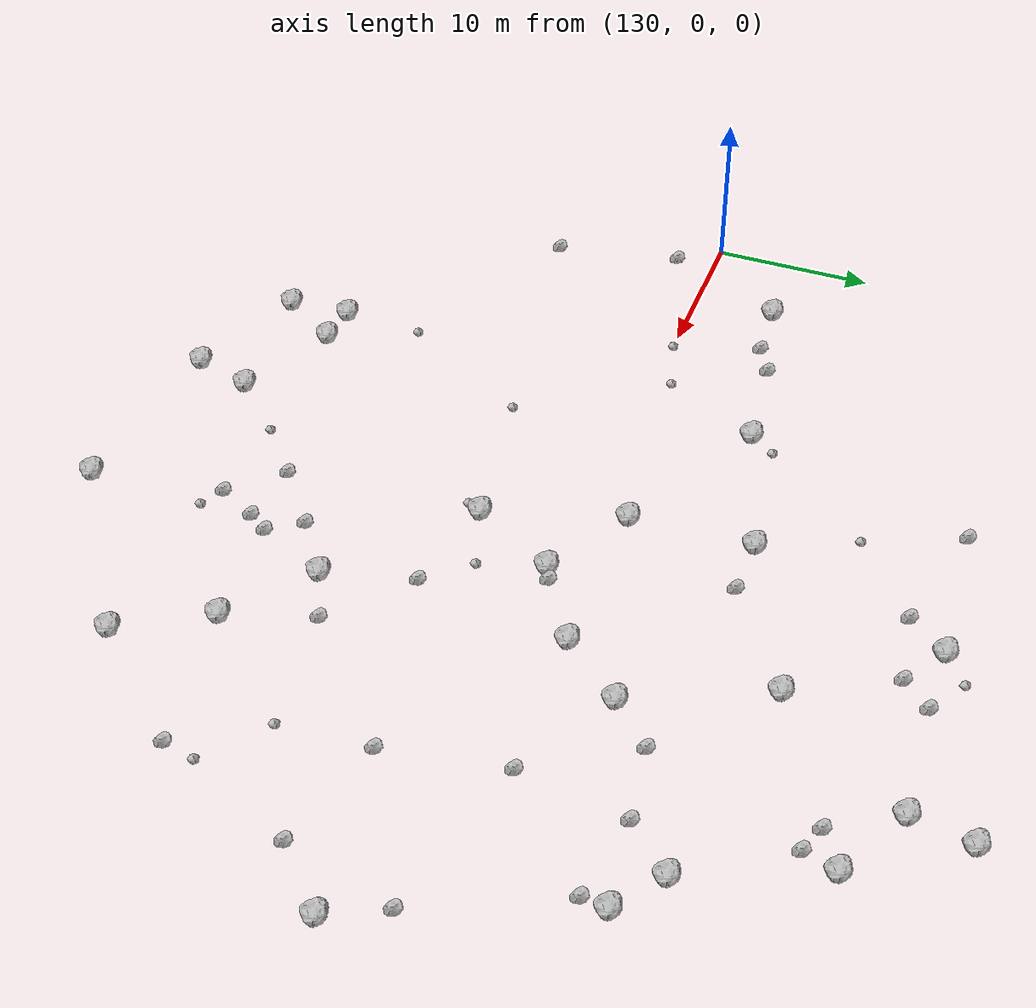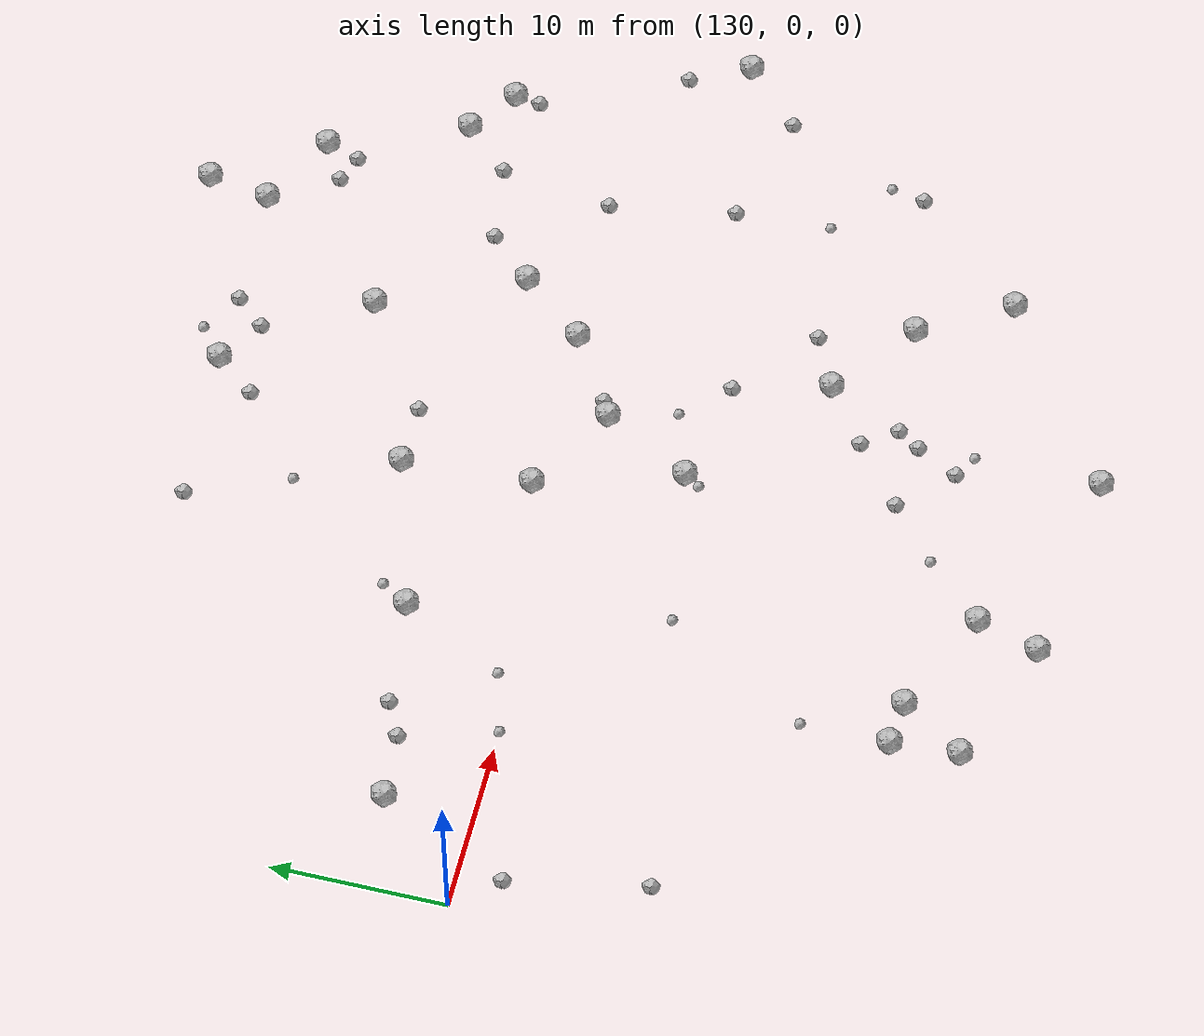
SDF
<sdf version="1.6">
 <world name="default">
  <include><uri>model://sun</uri></include>
  <model name="rock1_4_2">
   <include><uri>model://rock1</uri><pose>157.20539760571606 9.890798535691005 0.5 0 0 0</pose></include>
  </model>
  <model name="rock1_4_3">
   <include><uri>model://rock1</uri><pose>145.3965714052293 -20.907007430821533 0.5 0 0 0</pose></include>
  </model>
  <model name="rock1_4_4">
   <include><uri>model://rock1</uri><pose>145.6179734705588 -24.791983513725754 0.5 0 0 0</pose></include>
  </model>
  <model name="rock1_4_5">
   <include><uri>model://rock1</uri><pose>164.86655041010167 -28.967815381065762 0.5 0 0 0</pose></include>
  </model>
  <model name="rock1_4_6">
   <include><uri>model://rock1</uri><pose>189.46577213071947 -3.113488268676573 0.5 0 0 0</pose></include>
  </model>
  <model name="rock1_4_7">
   <include><uri>model://rock1</uri><pose>174.15365068872904 26.060533082342694 0.5 0 0 0</pose></include>
  </model>
  <model name="rock1_4_8">
   <include><uri>model://rock1</uri><pose>175.9566475192942 -21.81131245353731 0.5 0 0 0</pose></include>
  </model>
  <model name="rock1_4_9">
   <include><uri>model://rock1</uri><pose>173.46041346976193 22.385763172546582 0.5 0 0 0</pose></include>
  </model>
  <model name="rock1_4_10">
   <include><uri>model://rock1</uri><pose>135.69196584013005 5.09342452013685 0.5 0 0 0</pose></include>
  </model>
  <model name="rock1_4_11">
   <include><uri>model://rock1</uri><pose>153.15540949099355 -27.621157942832454 0.5 0 0 0</pose></include>
  </model>
  <model name="rock1_4_12">
   <include><uri>model://rock1</uri><pose>178.12328587047338 19.994080557914884 0.5 0 0 0</pose></include>
  </model>
  <model name="rock1_4_13">
   <include><uri>model://rock1</uri><pose>184.1583543342375 10.074927219355303 0.5 0 0 0</pose></include>
  </model>
  <model name="rock1_4_14">
   <include><uri>model://rock1</uri><pose>160.02790828185533 -5.958219433465221 0.5 0 0 0</pose></include>
  </model>
  <model name="rock1_4_15">
   <include><uri>model://rock1</uri><pose>181.30901352430277 12.146558302669767 0.5 0 0 0</pose></include>
  </model>
  <model name="rock1_4_16">
   <include><uri>model://rock1</uri><pose>171.21984607954064 6.094747046434925 0.5 0 0 0</pose></include>
  </model>
  <model name="rock1_4_17">
   <include><uri>model://rock1</uri><pose>161.72530703130263 21.92780334393825 0.5 0 0 0</pose></include>
  </model>
  <model name="rock1_4_18">
   <include><uri>model://rock1</uri><pose>147.94820014877982 7.125162997318398 0.5 0 0 0</pose></include>
  </model>
  <model name="rock1_4_19">
   <include><uri>model://rock1</uri><pose>157.50593379061564 2.337284746298586 0.5 0 0 0</pose></include>
  </model>
  <model name="rock1_4_20">
   <include><uri>model://rock1</uri><pose>167.97773956031153 2.270267730151083 0.5 0 0 0</pose></include>
  </model>
  <model name="rock1_4_21">
   <include><uri>model://rock1</uri><pose>148.0232955053427 -21.17616177180158 0.5 0 0 0</pose></include>
  </model>
  <model name="rock1_4_22">
   <include><uri>model://rock1</uri><pose>167.9287631587917 -12.718067673057849 0.5 0 0 0</pose></include>
  </model>
  <model name="rock1_4_23">
   <include><uri>model://rock1</uri><pose>172.8830928345351 -16.585074612400962 0.5 0 0 0</pose></include>
  </model>
  <model name="rock1_4_24">
   <include><uri>model://rock1</uri><pose>162.95178134020176 -0.753299029259491 0.5 0 0 0</pose></include>
  </model>
  <model name="rock1_4_25">
   <include><uri>model://rock1</uri><pose>167.5593904440983 14.259311015990349 0.5 0 0 0</pose></include>
  </model>
  <model name="rock1_4_26">
   <include><uri>model://rock1</uri><pose>154.26827681750726 -24.019749820688265 0.5 0 0 0</pose></include>
  </model>
  <model name="rock2_4_0">
   <include><uri>model://rock2</uri><pose>160.74439515302896 -17.97760002853094 0.3 0 0 0</pose></include>
  </model>
  <model name="rock2_4_1">
   <include><uri>model://rock2</uri><pose>178.53940458068166 9.401624433245196 0.3 0 0 0</pose></include>
  </model>
  <model name="rock2_4_2">
   <include><uri>model://rock2</uri><pose>139.4784519577242 5.384108698596549 0.3 0 0 0</pose></include>
  </model>
  <model name="rock2_4_3">
   <include><uri>model://rock2</uri><pose>175.68524666860088 18.616409088996647 0.3 0 0 0</pose></include>
  </model>
  <model name="rock2_4_4">
   <include><uri>model://rock2</uri><pose>171.05118564110438 -11.243505256004223 0.3 0 0 0</pose></include>
  </model>
  <model name="rock2_4_5">
   <include><uri>model://rock2</uri><pose>165.94819886727112 21.964946155906595 0.3 0 0 0</pose></include>
  </model>
  <model name="rock2_4_6">
   <include><uri>model://rock2</uri><pose>160.8212589007718 9.851597166364293 0.3 0 0 0</pose></include>
  </model>
  <model name="rock2_4_7">
   <include><uri>model://rock2</uri><pose>163.5316277746741 -20.859988596910334 0.3 0 0 0</pose></include>
  </model>
  <model name="rock2_4_8">
   <include><uri>model://rock2</uri><pose>183.87911650312202 8.562793518249087 0.3 0 0 0</pose></include>
  </model>
  <model name="rock2_4_9">
   <include><uri>model://rock2</uri><pose>133.51359144827853 -10.352413592305261 0.3 0 0 0</pose></include>
  </model>
  <model name="rock2_4_10">
   <include><uri>model://rock2</uri><pose>164.36958811436284 -15.152764842956579 0.3 0 0 0</pose></include>
  </model>
  <model name="rock2_4_11">
   <include><uri>model://rock2</uri><pose>177.47699917274002 2.7411559085284267 0.3 0 0 0</pose></include>
  </model>
  <model name="rock2_4_12">
   <include><uri>model://rock2</uri><pose>164.35740415787436 20.22365111124836 0.3 0 0 0</pose></include>
  </model>
  <model name="rock2_4_13">
   <include><uri>model://rock2</uri><pose>163.83170369057746 -0.28262295172317664 0.3 0 0 0</pose></include>
  </model>
  <model name="rock2_4_14">
   <include><uri>model://rock2</uri><pose>152.21125371608463 21.303942547934184 0.3 0 0 0</pose></include>
  </model>
  <model name="rock2_4_15">
   <include><uri>model://rock2</uri><pose>165.7286257287506 -17.125518377019155 0.3 0 0 0</pose></include>
  </model>
  <model name="rock2_4_16">
   <include><uri>model://rock2</uri><pose>185.81925180145623 -6.445502410248874 0.3 0 0 0</pose></include>
  </model>
  <model name="rock2_4_17">
   <include><uri>model://rock2</uri><pose>178.67300860130325 -4.618580812134873 0.3 0 0 0</pose></include>
  </model>
  <model name="rock2_4_18">
   <include><uri>model://rock2</uri><pose>159.6870684363073 19.534321079922634 0.3 0 0 0</pose></include>
  </model>
  <model name="rock2_4_19">
   <include><uri>model://rock2</uri><pose>141.50043143162426 6.394295354040565 0.3 0 0 0</pose></include>
  </model>
  <model name="rock2_4_20">
   <include><uri>model://rock2</uri><pose>131.99824528919865 -2.4810185781843046 0.3 0 0 0</pose></include>
  </model>
  <model name="rock2_4_21">
   <include><uri>model://rock2</uri><pose>187.7113824175961 0.32365767127459577 0.3 0 0 0</pose></include>
  </model>
  <model name="rock2_4_22">
   <include><uri>model://rock2</uri><pose>182.13470351052283 -15.140452322370804 0.3 0 0 0</pose></include>
  </model>
  <model name="rock2_4_23">
   <include><uri>model://rock2</uri><pose>166.4057331356049 -7.213660891932019 0.3 0 0 0</pose></include>
  </model>
  <model name="rock2_4_24">
   <include><uri>model://rock2</uri><pose>164.8340915623649 -18.42483510940535 0.3 0 0 0</pose></include>
  </model>
  <model name="rock2_4_25">
   <include><uri>model://rock2</uri><pose>177.37519886975673 17.996885848171353 0.3 0 0 0</pose></include>
  </model>
  <model name="rock2_4_26">
   <include><uri>model://rock2</uri><pose>173.74360356876764 8.706932683006954 0.3 0 0 0</pose></include>
  </model>
  <model name="rock3_4_0">
   <include><uri>model://rock3</uri><pose>159.41953772212116 -6.896183713267252 0.2 0 0 0</pose></include>
  </model>
  <model name="rock3_4_1">
   <include><uri>model://rock3</uri><pose>182.59419881690604 -13.160481460537454 0.2 0 0 0</pose></include>
  </model>
  <model name="rock3_4_2">
   <include><uri>model://rock3</uri><pose>157.50820302188453 -20.686325971795316 0.2 0 0 0</pose></include>
  </model>
  <model name="rock3_4_3">
   <include><uri>model://rock3</uri><pose>154.6012160204368 15.533911764399 0.2 0 0 0</pose></include>
  </model>
  <model name="rock3_4_4">
   <include><uri>model://rock3</uri><pose>178.95756773836337 -10.25719031333901 0.2 0 0 0</pose></include>
  </model>
  <model name="rock3_4_5">
   <include><uri>model://rock3</uri><pose>144.7291693082107 1.0151130496086367 0.2 0 0 0</pose></include>
  </model>
  <model name="rock3_4_6">
   <include><uri>model://rock3</uri><pose>164.010378660483 -4.669657260952384 0.2 0 0 0</pose></include>
  </model>
  <model name="rock3_4_7">
   <include><uri>model://rock3</uri><pose>145.42849199074547 -15.896464856985679 0.2 0 0 0</pose></include>
  </model>
  <model name="rock3_4_8">
   <include><uri>model://rock3</uri><pose>163.552784176224 23.40950112370279 0.2 0 0 0</pose></include>
  </model>
  <model name="rock3_4_9">
   <include><uri>model://rock3</uri><pose>150.34296329660486 -7.529105713517637 0.2 0 0 0</pose></include>
  </model>
  <model name="rock3_4_10">
   <include><uri>model://rock3</uri><pose>141.08091260361667 0.007161143740262332 0.2 0 0 0</pose></include>
  </model>
  <model name="rock3_4_11">
   <include><uri>model://rock3</uri><pose>148.9229692397059 8.71721512949346 0.2 0 0 0</pose></include>
  </model>
  <model name="rock3_4_12">
   <include><uri>model://rock3</uri><pose>164.96343258706838 -21.70451079496285 0.2 0 0 0</pose></include>
  </model>
 </world>
</sdf>
